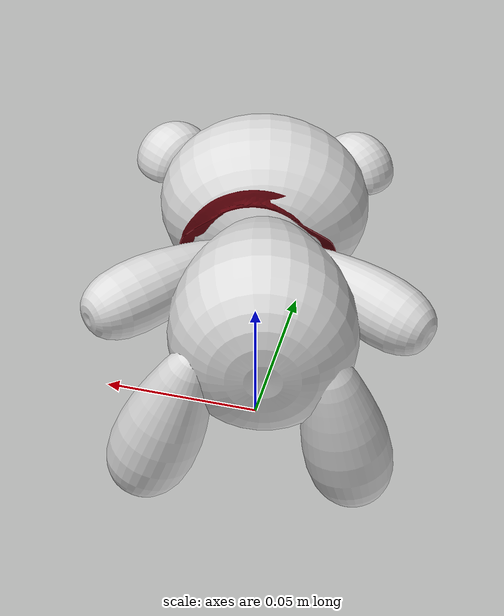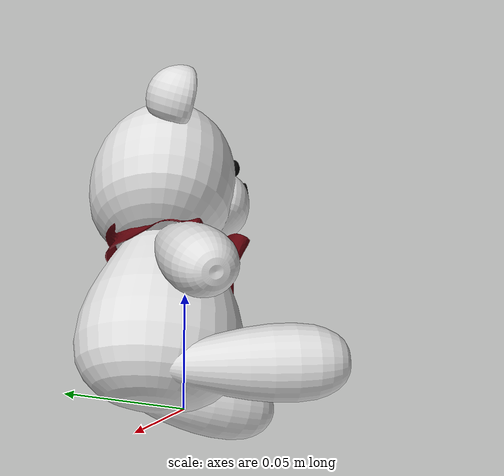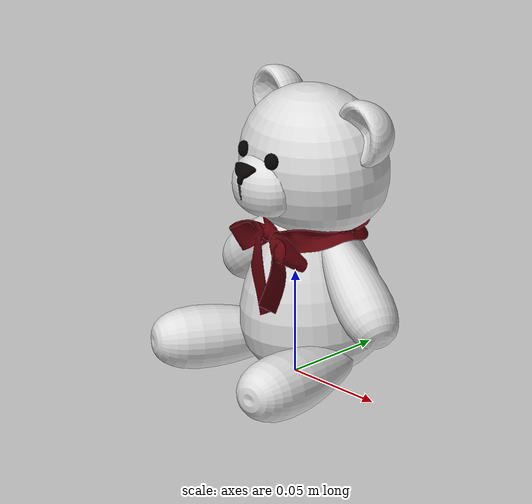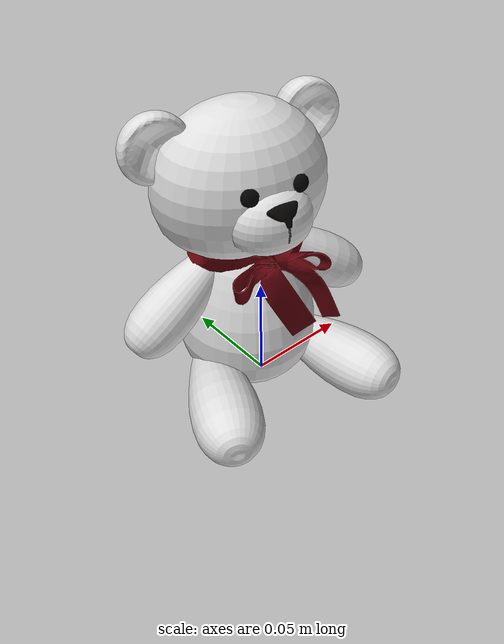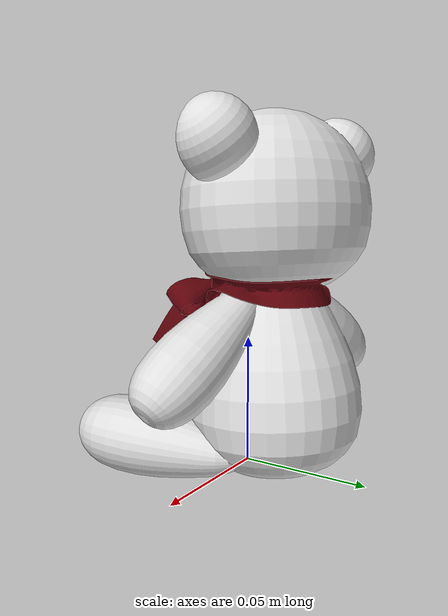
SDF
<?xml version='1.0'?>
<sdf version='1.5'>
  <model name ="osito_blanco">

    <link name='base_link'></link>

    <link name="link">
      <pose>0 0 0.07 0 0 0</pose>
      <inertial>
        <mass>0.1</mass>
        <inertia>
          <ixx>0.01</ixx>
          <ixy>0.0</ixy>
          <ixz>0.0</ixz>
          <iyy>0.01</iyy>
          <iyz>0.0</iyz>
          <izz>0.01</izz>
        </inertia>
      </inertial>
      <collision name="collision">
        <geometry>
          <box>
            <size>0.1 0.05 0.14</size>
          </box>
        </geometry>
      </collision>
      <visual name="visual">
        <geometry>
          <mesh>
            <uri> model://osito_blanco/meshes/blanco.dae </uri>
          </mesh>
        </geometry>
      </visual>
    </link>

    <joint name='joint' type='fixed'>
      <child>link</child>
      <parent>base_link</parent>
      <axis>
          <xyz>0.000000 0.000000 1.000000</xyz>
      </axis>
    </joint>

  </model>
</sdf>
